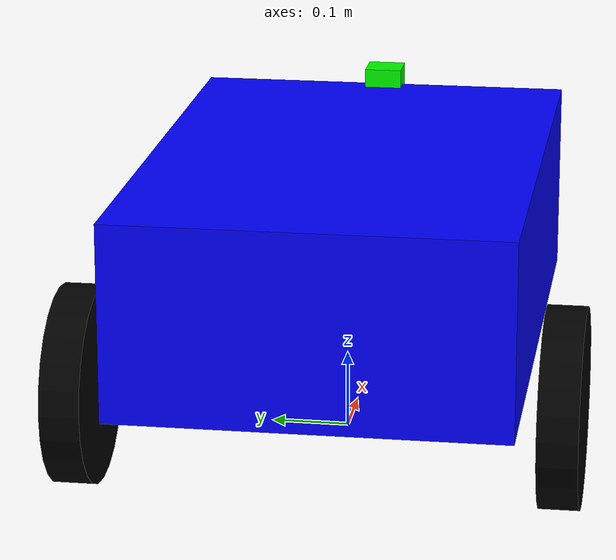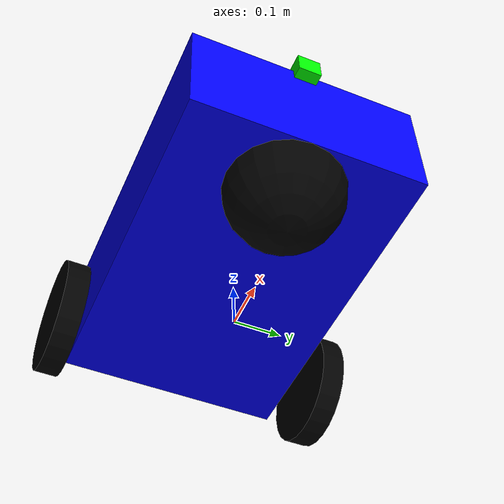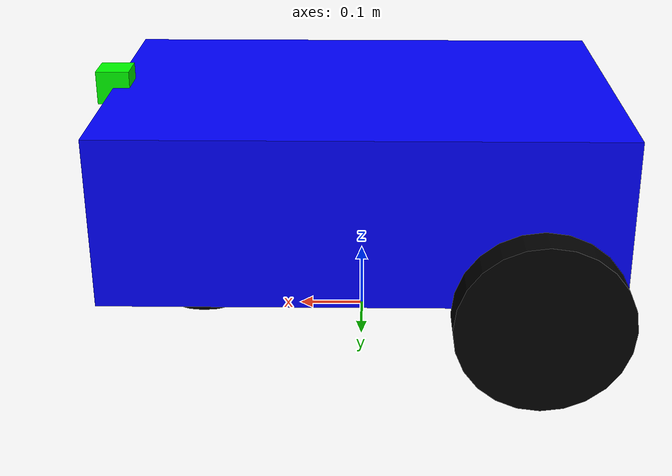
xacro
<?xml version="1.0"?>
<robot xmlns:xacro="http://www.ros.org/wiki/xacro" name="apriltag_torso_bot">

  <xacro:arg name="config_file" default=""/>

  <material name="black"><color rgba="0 0 0 1"/></material>
  <material name="blue"><color rgba="0 0 1 1"/></material>
  <material name="green"><color rgba="0 1 0 1"/></material>

  <xacro:property name="base_length" value="0.75"/>
  <xacro:property name="base_width"  value="0.5"/>
  <xacro:property name="base_height" value="0.25"/>
  <xacro:property name="base_mass"   value="31.25"/>

  <xacro:property name="wheel_radius" value="0.125"/>
  <xacro:property name="wheel_width"  value="0.05"/>
  <xacro:property name="wheel_mass"   value="3.1"/>
  <xacro:property name="track" value="0.6"/>
  <xacro:property name="cam_size" value="0.05"/>

  <xacro:macro name="box_inertia" params="m x y z">
    <inertial>
      <mass value="${m}"/>
      <inertia ixx="${m*(y*y+z*z)/12}" iyy="${m*(x*x+z*z)/12}" izz="${m*(x*x+y*y)/12}" ixy="0" ixz="0" iyz="0"/>
    </inertial>
  </xacro:macro>

  <xacro:macro name="cylinder_inertia" params="m r h">
    <inertial>
      <mass value="${m}"/>
      <inertia ixx="${m*(3*r*r+h*h)/12}" iyy="${m*(3*r*r+h*h)/12}" izz="${m*r*r/2}" ixy="0" ixz="0" iyz="0"/>
    </inertial>
  </xacro:macro>

  <link name="base_link">
    <xacro:box_inertia m="${base_mass}" x="${base_length}" y="${base_width}" z="${base_height}"/>
    <visual>
      <origin xyz="0 0 ${base_height/2 + wheel_radius}" rpy="0 0 0"/>
      <geometry><box size="${base_length} ${base_width} ${base_height}"/></geometry>
      <material name="blue"/>
    </visual>
    <collision>
      <origin xyz="0 0 ${base_height/2 + wheel_radius}" rpy="0 0 0"/>
      <geometry><box size="${base_length} ${base_width} ${base_height}"/></geometry>
    </collision>
  </link>

  <link name="front_caster">
    <visual>
      <geometry><sphere radius="${wheel_radius}"/></geometry>
      <material name="black"/>
    </visual>
    <collision>
      <geometry><sphere radius="${wheel_radius}"/></geometry>
    </collision>
    <inertial>
      <mass value="0.1"/>
      <inertia ixx="0.0001" ixy="0.0" ixz="0.0" iyy="0.0001" iyz="0.0" izz="0.0001"/>
    </inertial>
  </link>

  <joint name="caster_joint" type="fixed">
    <parent link="base_link"/>
    <child link="front_caster"/>
    <origin xyz="${base_length/3} 0 ${wheel_radius}"/>
  </joint>

  <gazebo reference="front_caster">
    <mu1 value="0.001"/>
    <mu2 value="0.001"/>
  </gazebo>

  <xacro:macro name="wheel" params="name y">
    <link name="${name}_wheel_link">
      <xacro:cylinder_inertia m="${wheel_mass}" r="${wheel_radius}" h="${wheel_width}"/>
      <visual>
        <origin xyz="0 0 0" rpy="${pi/2} 0 0"/>
        <geometry><cylinder radius="${wheel_radius}" length="${wheel_width}"/></geometry>
        <material name="black"/>
      </visual>
      <collision>
        <origin xyz="0 0 0" rpy="${pi/2} 0 0"/>
        <geometry><cylinder radius="${wheel_radius}" length="${wheel_width}"/></geometry>
      </collision>
    </link>

    <joint name="${name}_wheel_joint" type="continuous">
      <parent link="base_link"/>
      <child link="${name}_wheel_link"/>
      <origin xyz="${-base_length/3} ${y} ${wheel_radius + 0.005}"/>
      <axis xyz="0 1 0"/>
    </joint>

    <gazebo reference="${name}_wheel_link">
    </gazebo>
  </xacro:macro>

  <xacro:wheel name="left"  y="${track/2}"/>
  <xacro:wheel name="right" y="${-track/2}"/>

  <link name="camera_link">
    <visual>
      <geometry><box size="${cam_size} ${cam_size} ${cam_size}"/></geometry>
      <material name="green"/>
    </visual>
    <xacro:box_inertia m="0.1" x="${cam_size}" y="${cam_size}" z="${cam_size}"/>
  </link>

  <joint name="camera_joint" type="fixed">
    <parent link="imu_link"/>
    <child link="camera_link"/>
    <origin xyz="0.375 0 0.125" rpy="0 0 0"/>
  </joint>

  <link name="camera_optical_frame"/>
  <joint name="camera_optical_joint" type="fixed">
    <parent link="camera_link"/>
    <child link="camera_optical_frame"/>
    <origin xyz="0 0 0" rpy="${-pi/2} 0 ${-pi/2}"/>
  </joint>

  <gazebo reference="camera_link">
    <sensor name="/apriltag_slam/camera" type="camera">
      <pose> 0 0 0 0 0 0 </pose>
      <visualize>true</visualize>
      <update_rate>10</update_rate>
      <camera>
        <horizontal_fov>1.089</horizontal_fov>
        <image>
          <format>R8G8B8</format>
          <width>640</width>
          <height>480</height>
        </image>
        <clip>
          <near>0.05</near>
          <far>8.0</far>
        </clip>
      </camera>
      <plugin name="camera_controller" filename="libgazebo_ros_camera.so">
        <frame_name>camera_optical_frame</frame_name>
      </plugin>
    </sensor>
  </gazebo>

  <link name="imu_link"/>
  <joint name="imu_joint" type="fixed">
    <parent link="base_link"/>
    <child link="imu_link"/>
    <origin xyz="0 0 ${base_height/2 + wheel_radius}"/>
  </joint>

  <gazebo reference="imu_link">
    <sensor name="imu_sensor" type="imu">
      <plugin name="imu_plugin" filename="libgazebo_ros_imu_sensor.so"/>
      <always_on>true</always_on>
      <update_rate>100</update_rate>
      <imu/>
    </sensor>
  </gazebo>

  <ros2_control name="DiffDriveSystem" type="system">
    <hardware>
      <plugin>gazebo_ros2_control/GazeboSystem</plugin>
    </hardware>
    <joint name="left_wheel_joint">
      <command_interface name="velocity"/>
      <state_interface name="position"/><state_interface name="velocity"/>
    </joint>
    <joint name="right_wheel_joint">
      <command_interface name="velocity"/>
      <state_interface name="position"/><state_interface name="velocity"/>
    </joint>
    <sensor name="imu_sensor">
        <state_interface name="orientation.x"/><state_interface name="orientation.y"/>
        <state_interface name="orientation.z"/><state_interface name="orientation.w"/>
        <state_interface name="angular_velocity.x"/><state_interface name="angular_velocity.y"/><state_interface name="angular_velocity.z"/>
        <state_interface name="linear_acceleration.x"/><state_interface name="linear_acceleration.y"/><state_interface name="linear_acceleration.z"/>
    </sensor>
  </ros2_control>

  <gazebo>
    <plugin name="gazebo_ros2_control" filename="libgazebo_ros2_control.so">
      <parameters>$(arg config_file)</parameters>
    </plugin>
  </gazebo>

</robot>
